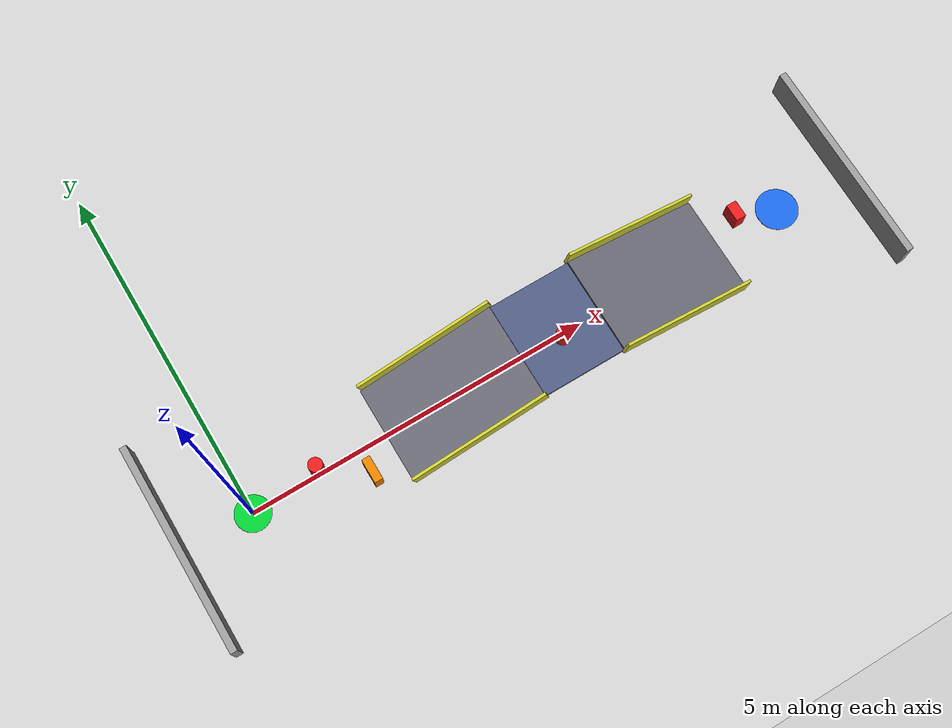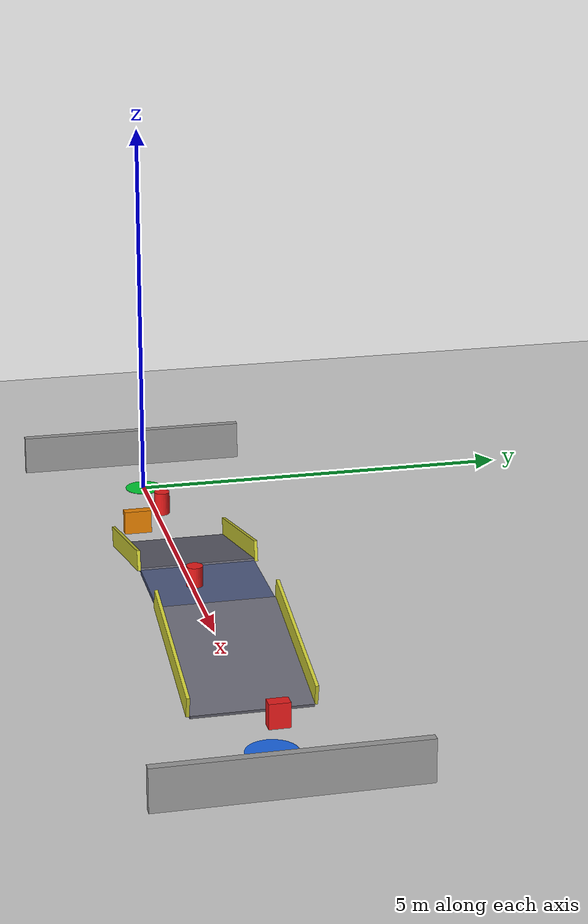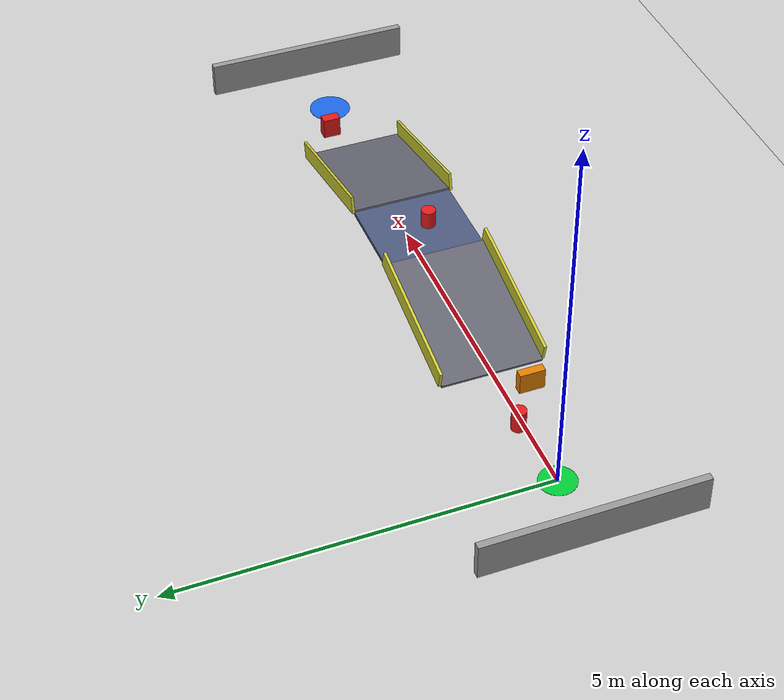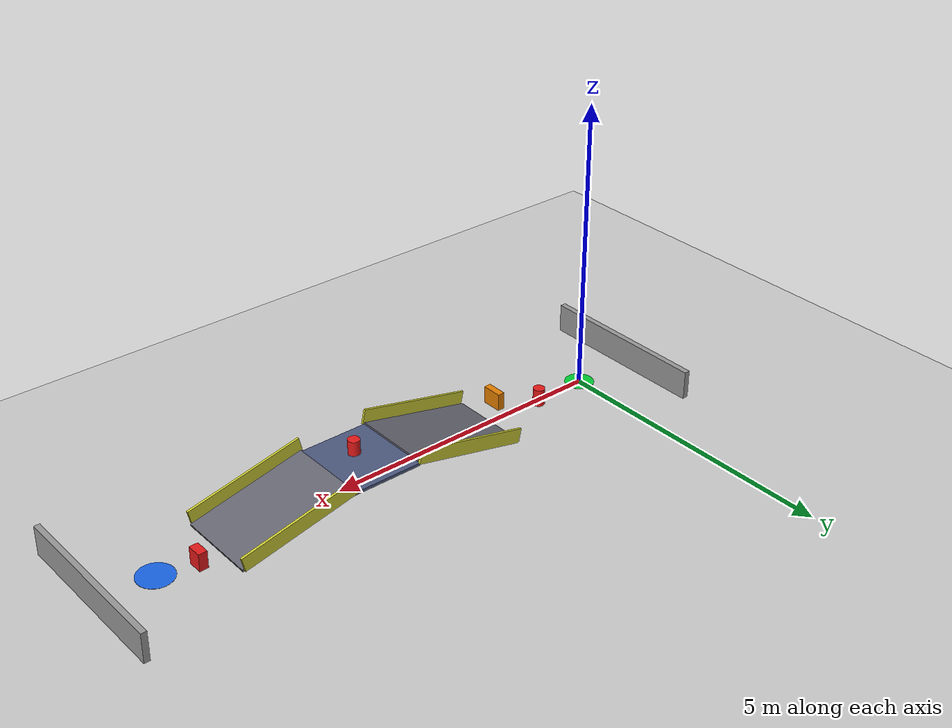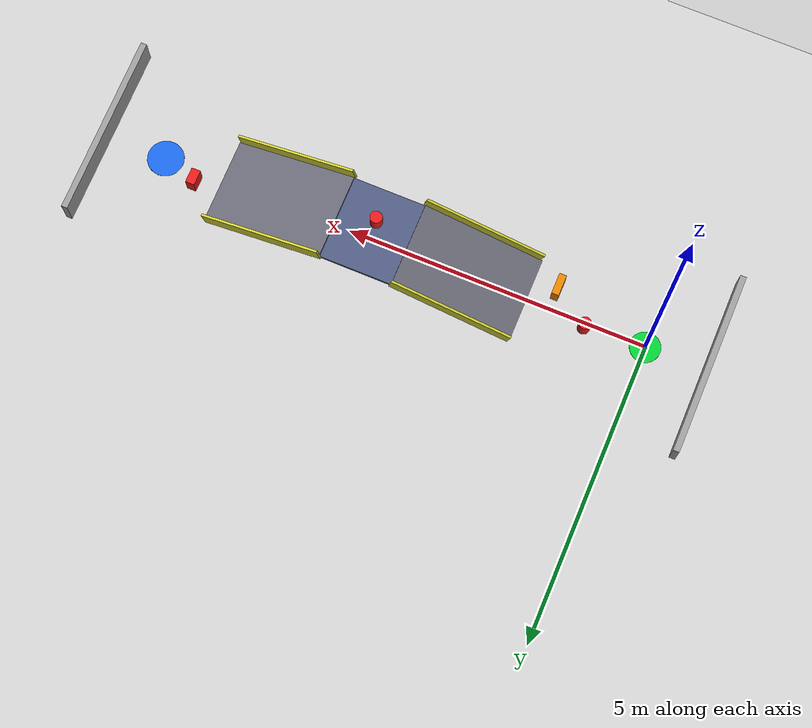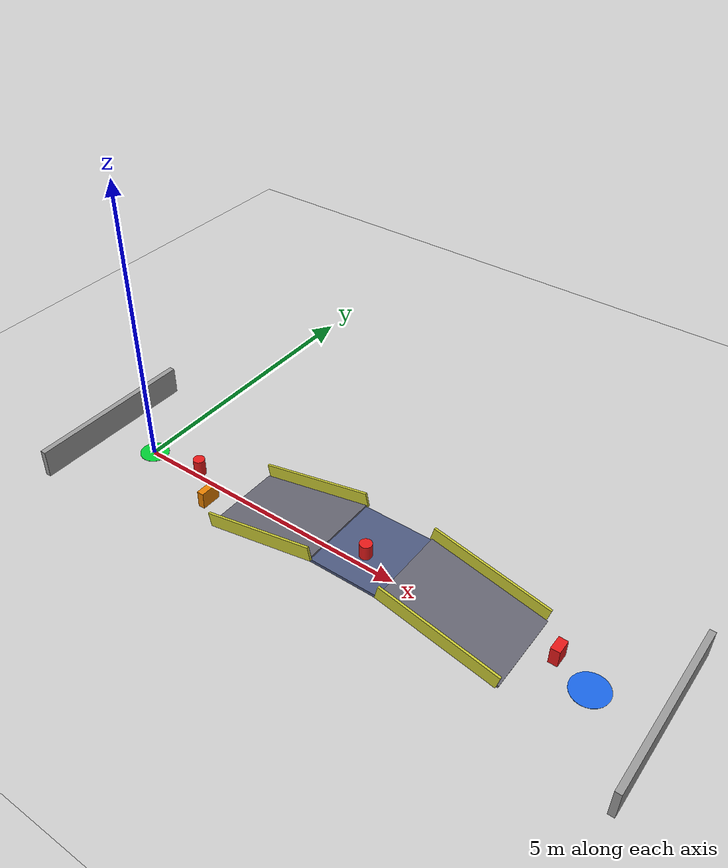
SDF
<?xml version="1.0" ?>
<sdf version="1.8">
  <world name="pista_rampa_y_piso_plano">

    <!-- 1. PLUGINS DEL SISTEMA GAZEBO HARMONIC Y FISICA                   -->
    <physics name="1ms" type="ignored">
      <max_step_size>0.002</max_step_size>
      <real_time_factor>1.0</real_time_factor>
    </physics>

    <plugin
      filename="gz-sim-physics-system"
      name="gz::sim::systems::Physics">
    </plugin>
    <plugin
      filename="gz-sim-user-commands-system"
      name="gz::sim::systems::UserCommands">
    </plugin>
    <plugin
      filename="gz-sim-scene-broadcaster-system"
      name="gz::sim::systems::SceneBroadcaster">
    </plugin>
    <plugin
      filename="gz-sim-sensors-system"
      name="gz::sim::systems::Sensors">
      <render_engine>ogre2</render_engine>
    </plugin>

    <!-- Iluminación y Suelo Nativos -->
    <light type="directional" name="sun">
      <cast_shadows>true</cast_shadows>
      <pose>0 0 10 0 0 0</pose>
      <diffuse>0.8 0.8 0.8 1</diffuse>
      <specular>0.2 0.2 0.2 1</specular>
      <direction>-0.5 0.1 -0.9</direction>
    </light>

    <model name="ground_plane">
      <static>true</static>
      <link name="link">
        <collision name="collision">
          <geometry><plane><normal>0 0 1</normal><size>100 100</size></plane></geometry>
        </collision>
        <visual name="visual">
          <geometry><plane><normal>0 0 1</normal><size>100 100</size></plane></geometry>
          <material>
            <ambient>0.8 0.8 0.8 1</ambient>
            <diffuse>0.8 0.8 0.8 1</diffuse>
          </material>
        </visual>
      </link>
    </model>

    <!-- 2. PISO PLANO INICIAL (ZONA DE ARRANQUE Y NAVEGACION PUNTO A)      -->
    <!-- Marcador de inicio Punto A (0, 0, 0) -->
    <model name="marcador_punto_a">
      <static>true</static>
      <pose>0 0 0.002 0 0 0</pose>
      <link name="link">
        <visual name="vis">
          <geometry><cylinder><radius>0.25</radius><length>0.004</length></cylinder></geometry>
          <material><ambient>0 0.8 0.2 1</ambient><diffuse>0 0.8 0.2 1</diffuse></material>
        </visual>
      </link>
    </model>

    <!-- Obstaculo reactivo 1 en piso plano (Fuerza desvio frontal ToF < 180 mm) -->
    <model name="obstaculo_plano_1">
      <static>true</static>
      <pose>1.0 0.08 0.15 0 0 0</pose>
      <link name="link">
        <collision name="col">
          <geometry><cylinder><radius>0.10</radius><length>0.30</length></cylinder></geometry>
        </collision>
        <visual name="vis">
          <geometry><cylinder><radius>0.10</radius><length>0.30</length></cylinder></geometry>
          <material><ambient>0.9 0.1 0.1 1</ambient><diffuse>0.9 0.1 0.1 1</diffuse></material>
        </visual>
      </link>
    </model>

    <!-- Obstaculo de emergencia 2 en piso plano (Para probar Active Braking < 80 mm) -->
    <model name="barrera_emergencia_plano">
      <static>true</static>
      <pose>1.6 -0.35 0.15 0 0 0</pose>
      <link name="link">
        <collision name="col">
          <geometry><box><size>0.12 0.35 0.30</size></box></geometry>
        </collision>
        <visual name="vis">
          <geometry><box><size>0.12 0.35 0.30</size></box></geometry>
          <material><ambient>0.9 0.5 0.0 1</ambient><diffuse>0.9 0.5 0.0 1</diffuse></material>
        </visual>
      </link>
    </model>

    <!-- 3. RAMPA DE SUBIDA (INCLINE RAMP: de X=2.0 a X=4.0, sube a Z=0.45m)-->
    <!-- Inclinacion de aprox. 12.7 grados (0.222 rad)                     -->
    <model name="rampa_subida">
      <static>true</static>
      <!-- Centro de la rampa en X=3.0, Z=0.225, pitch = -0.222 rad -->
      <pose>3.0 0 0.225 0 -0.222 0</pose>
      <link name="link">
        <collision name="col">
          <geometry><box><size>2.05 1.40 0.05</size></box></geometry>
          <surface>
            <friction>
              <ode>
                <mu>1.2</mu>
                <mu2>1.2</mu2>
                <slip1>0.0</slip1>
                <slip2>0.0</slip2>
              </ode>
            </friction>
          </surface>
        </collision>
        <visual name="vis">
          <geometry><box><size>2.05 1.40 0.05</size></box></geometry>
          <material><ambient>0.4 0.4 0.45 1</ambient><diffuse>0.4 0.4 0.45 1</diffuse></material>
        </visual>
      </link>
    </model>

    <!-- Barandas de seguridad laterales rampa subida -->
    <model name="baranda_subida_izq">
      <static>true</static>
      <pose>3.0 0.72 0.35 0 -0.222 0</pose>
      <link name="l"><collision name="c"><geometry><box><size>2.05 0.04 0.25</size></box></geometry></collision><visual name="v"><geometry><box><size>2.05 0.04 0.25</size></box></geometry><material><ambient>0.8 0.8 0.2 1</ambient><diffuse>0.8 0.8 0.2 1</diffuse></material></visual></link>
    </model>
    <model name="baranda_subida_der">
      <static>true</static>
      <pose>3.0 -0.72 0.35 0 -0.222 0</pose>
      <link name="l"><collision name="c"><geometry><box><size>2.05 0.04 0.25</size></box></geometry></collision><visual name="v"><geometry><box><size>2.05 0.04 0.25</size></box></geometry><material><ambient>0.8 0.8 0.2 1</ambient><diffuse>0.8 0.8 0.2 1</diffuse></material></visual></link>
    </model>

    <!-- 4. MESETA SUPERIOR (PLATAFORMA ELEVADA: X=4.0 a X=5.2, Z=0.45m)    -->
    <model name="plataforma_superior">
      <static>true</static>
      <pose>4.6 0 0.425 0 0 0</pose>
      <link name="link">
        <collision name="col">
          <geometry><box><size>1.20 1.40 0.05</size></box></geometry>
          <surface>
            <friction><ode><mu>1.2</mu><mu2>1.2</mu2></ode></friction>
          </surface>
        </collision>
        <visual name="vis">
          <geometry><box><size>1.20 1.40 0.05</size></box></geometry>
          <material><ambient>0.3 0.35 0.5 1</ambient><diffuse>0.3 0.35 0.5 1</diffuse></material>
        </visual>
      </link>
    </model>

    <!-- Obstaculo en la meseta superior (Prueba evasion en altura) -->
    <model name="obstaculo_meseta">
      <static>true</static>
      <pose>4.6 -0.15 0.575 0 0 0</pose>
      <link name="link">
        <collision name="col"><geometry><cylinder><radius>0.10</radius><length>0.25</length></cylinder></geometry></collision>
        <visual name="vis"><geometry><cylinder><radius>0.10</radius><length>0.25</length></cylinder></geometry><material><ambient>0.9 0.1 0.1 1</ambient><diffuse>0.9 0.1 0.1 1</diffuse></material></visual>
      </link>
    </model>

    <!-- 5. RAMPA DE BAJADA (DECLINE RAMP: de X=5.2 a X=7.2, baja a Z=0.0m) -->
    <!-- Inclinacion de aprox. 12.7 grados (+0.222 rad)                     -->
    <model name="rampa_bajada">
      <static>true</static>
      <!-- Centro en X=6.2, Z=0.225, pitch = +0.222 rad -->
      <pose>6.2 0 0.225 0 0.222 0</pose>
      <link name="link">
        <collision name="col">
          <geometry><box><size>2.05 1.40 0.05</size></box></geometry>
          <surface>
            <friction>
              <ode>
                <mu>1.2</mu>
                <mu2>1.2</mu2>
                <slip1>0.0</slip1>
                <slip2>0.0</slip2>
              </ode>
            </friction>
          </surface>
        </collision>
        <visual name="vis">
          <geometry><box><size>2.05 1.40 0.05</size></box></geometry>
          <material><ambient>0.4 0.4 0.45 1</ambient><diffuse>0.4 0.4 0.45 1</diffuse></material>
        </visual>
      </link>
    </model>

    <!-- Barandas de seguridad laterales rampa bajada -->
    <model name="baranda_bajada_izq">
      <static>true</static>
      <pose>6.2 0.72 0.35 0 0.222 0</pose>
      <link name="l"><collision name="c"><geometry><box><size>2.05 0.04 0.25</size></box></geometry></collision><visual name="v"><geometry><box><size>2.05 0.04 0.25</size></box></geometry><material><ambient>0.8 0.8 0.2 1</ambient><diffuse>0.8 0.8 0.2 1</diffuse></material></visual></link>
    </model>
    <model name="baranda_bajada_der">
      <static>true</static>
      <pose>6.2 -0.72 0.35 0 0.222 0</pose>
      <link name="l"><collision name="c"><geometry><box><size>2.05 0.04 0.25</size></box></geometry></collision><visual name="v"><geometry><box><size>2.05 0.04 0.25</size></box></geometry><material><ambient>0.8 0.8 0.2 1</ambient><diffuse>0.8 0.8 0.2 1</diffuse></material></visual></link>
    </model>

    <!-- 6. PISO PLANO FINAL Y META OBJETIVO (PUNTO B: X=8.2, Y=0.0)        -->
    <!-- Marcador visual del Punto Objetivo B -->
    <model name="marcador_punto_b">
      <static>true</static>
      <pose>8.2 0.0 0.002 0 0 0</pose>
      <link name="link">
        <visual name="vis">
          <geometry><cylinder><radius>0.30</radius><length>0.005</length></cylinder></geometry>
          <material><ambient>0.1 0.4 0.9 1</ambient><diffuse>0.1 0.4 0.9 1</diffuse></material>
        </visual>
      </link>
    </model>

    <!-- Obstaculo de aproximacion final -->
    <model name="obstaculo_final">
      <static>true</static>
      <pose>7.6 0.2 0.15 0 0 0</pose>
      <link name="link">
        <collision name="col"><geometry><box><size>0.15 0.25 0.30</size></box></geometry></collision>
        <visual name="vis"><geometry><box><size>0.15 0.25 0.30</size></box></geometry><material><ambient>0.9 0.1 0.1 1</ambient><diffuse>0.9 0.1 0.1 1</diffuse></material></visual>
      </link>
    </model>

    <!-- Paredes perimetrales de contencion general -->
    <model name="pared_final_tope">
      <static>true</static>
      <pose>9.2 0 0.25 0 0 0</pose>
      <link name="l"><collision name="c"><geometry><box><size>0.1 3.0 0.5</size></box></geometry></collision><visual name="v"><geometry><box><size>0.1 3.0 0.5</size></box></geometry><material><ambient>0.6 0.6 0.6 1</ambient><diffuse>0.6 0.6 0.6 1</diffuse></material></visual></link>
    </model>
    <model name="pared_inicio_tope">
      <static>true</static>
      <pose>-1.0 0 0.25 0 0 0</pose>
      <link name="l"><collision name="c"><geometry><box><size>0.1 3.0 0.5</size></box></geometry></collision><visual name="v"><geometry><box><size>0.1 3.0 0.5</size></box></geometry><material><ambient>0.6 0.6 0.6 1</ambient><diffuse>0.6 0.6 0.6 1</diffuse></material></visual></link>
    </model>

  </world>
</sdf>
